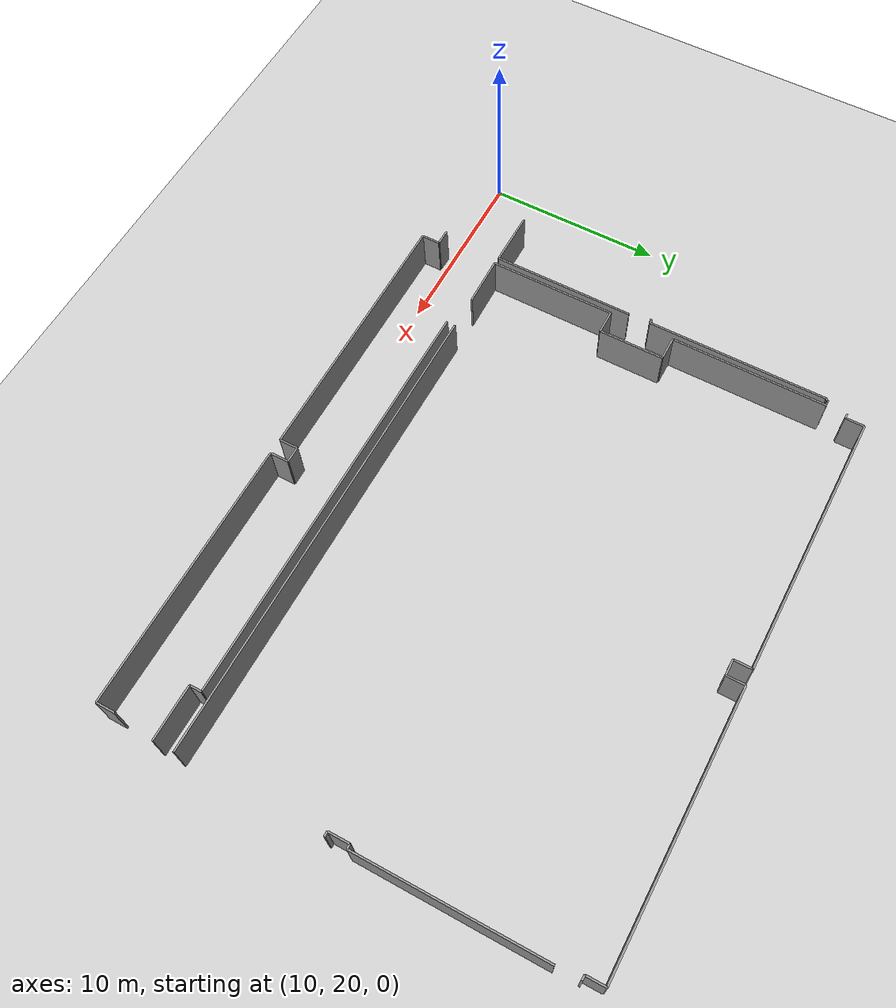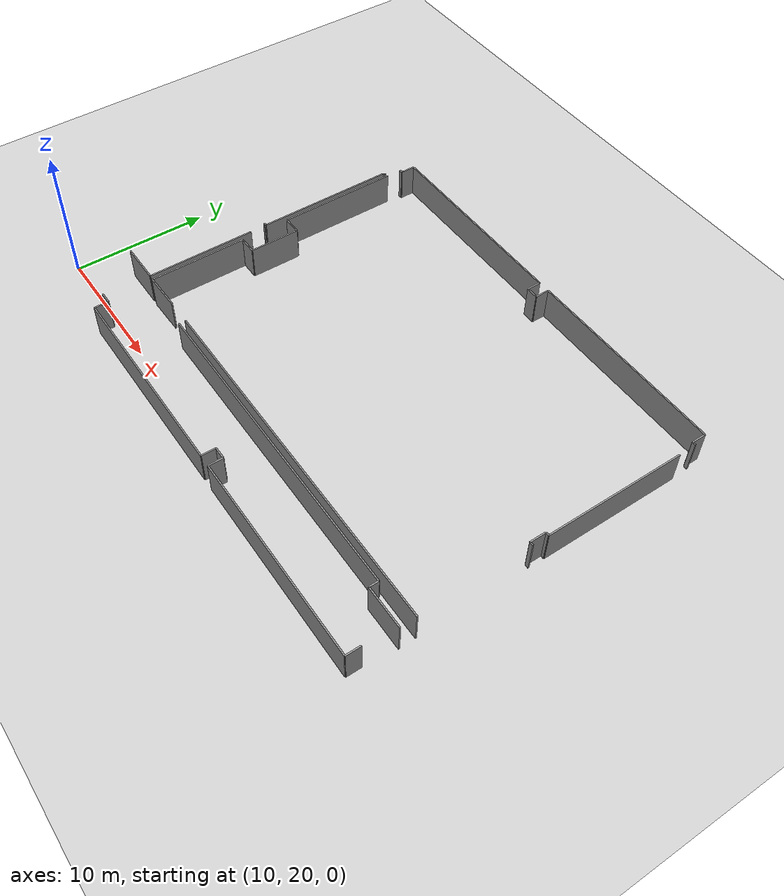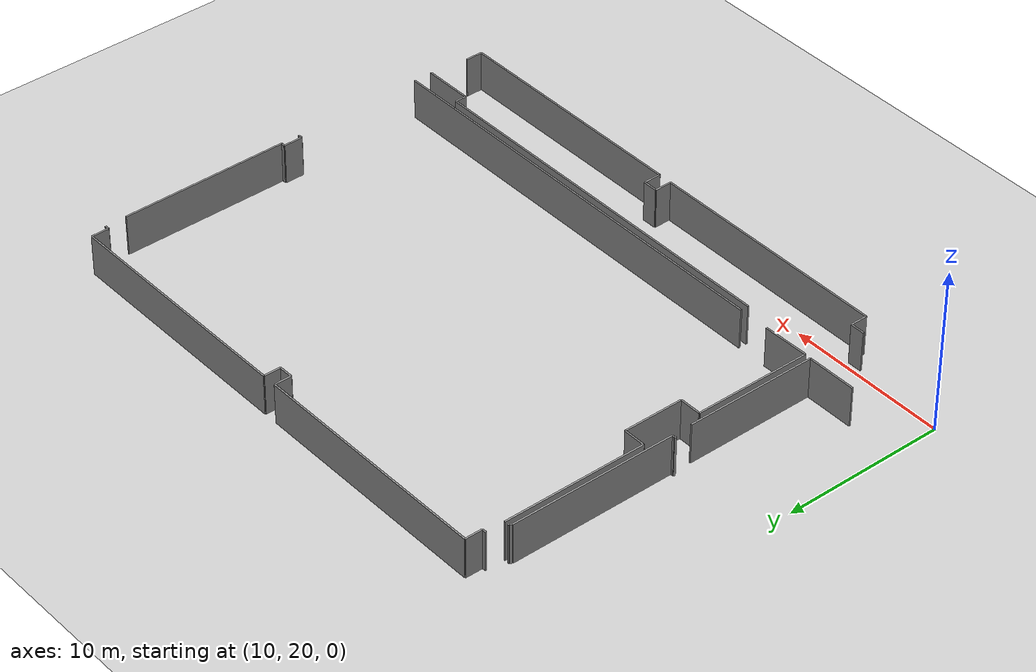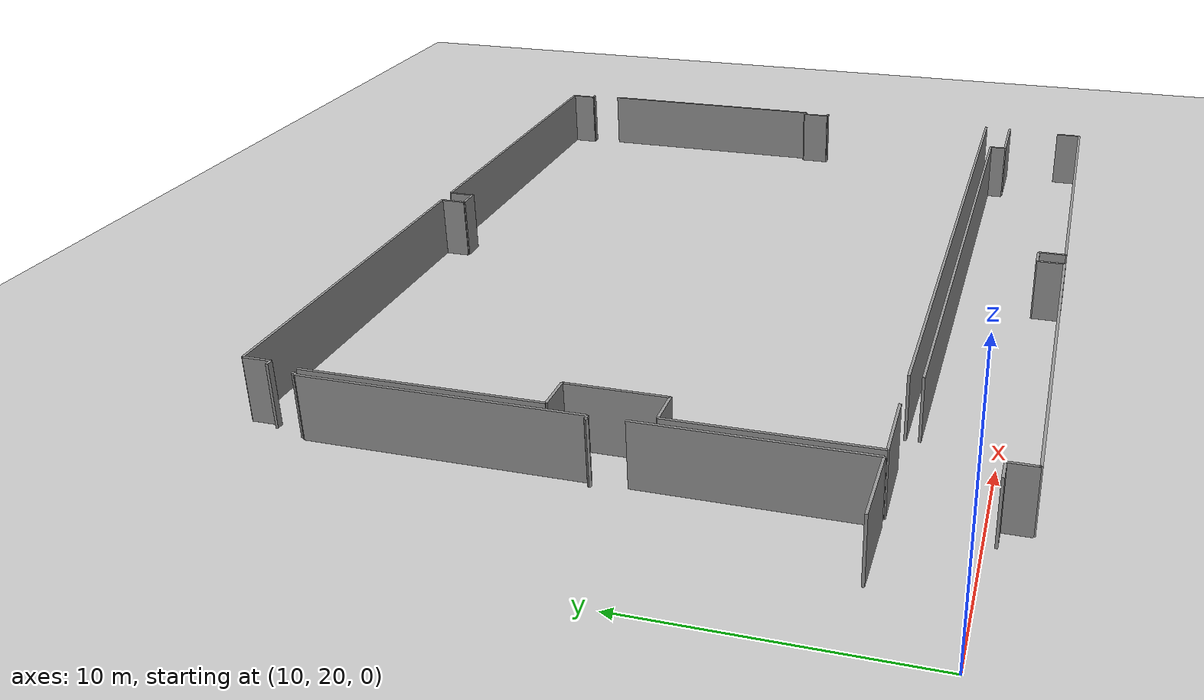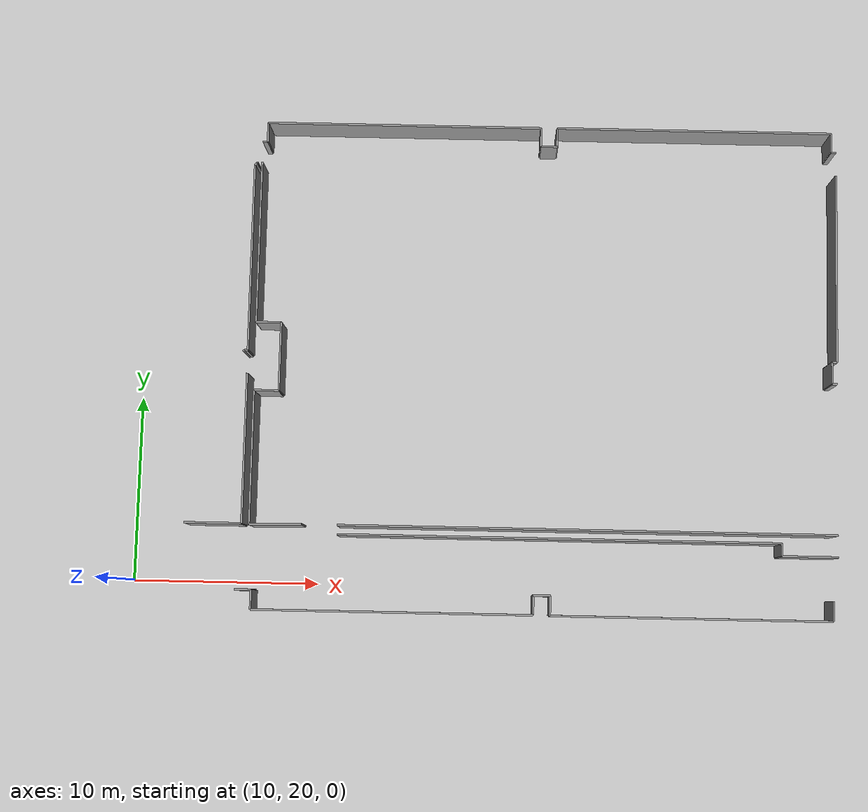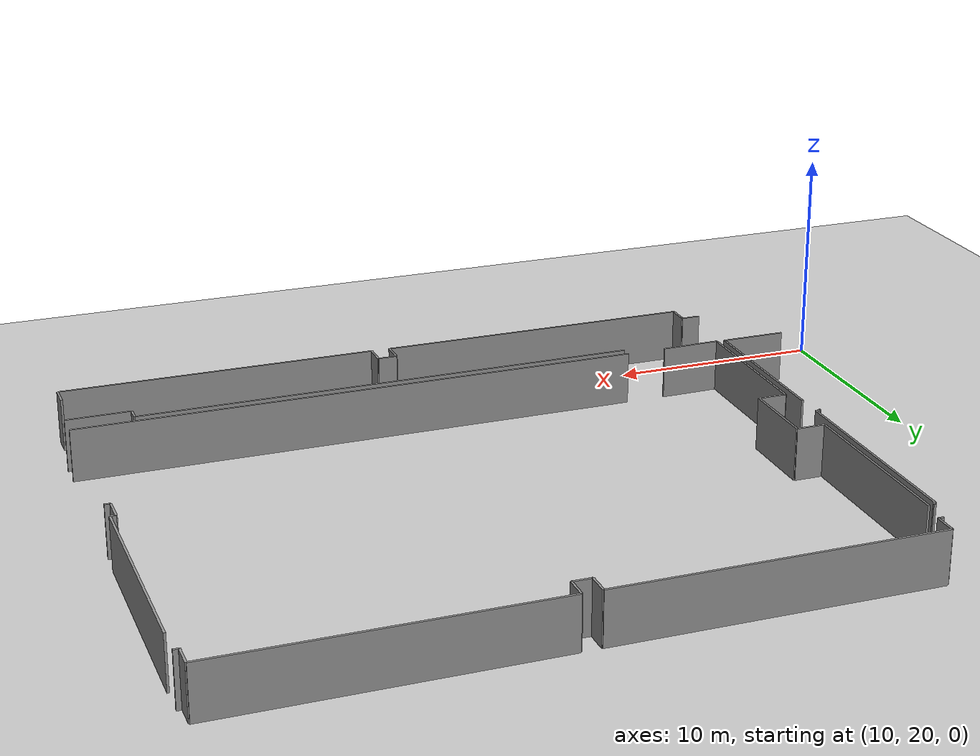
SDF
<sdf version="1.6">
 <world name="default">
  <model name="ground_plane">
   <static>1</static>
   <link name="link">
    <collision name="collision">
     <geometry><plane><normal>0 0 1</normal><size>100 100</size></plane></geometry>
     <surface><friction><ode><mu>100</mu><mu2>50</mu2></ode></friction></surface>
    </collision>
    <visual name="visual">
     <cast_shadows>0</cast_shadows>
     <geometry><plane><normal>0 0 1</normal><size>100 100</size></plane></geometry>
     <material>
      <script><uri>file://media/materials/scripts/gazebo.material</uri><name>Gazebo/Grey</name></script>
     </material>
    </visual>
   </link>
  </model>
  <model name="0510035737_A_40_1_105">
   <static>1</static>
   <link name="Wall_342">
    <collision name="Wall_342_Collision">
     <geometry><box><size>0.0915128213276 0.1 2.5</size></box></geometry>
     <pose>0.0457564106638 0 1.25 0 0 0</pose>
    </collision>
    <visual name="Wall_342_Visual">
     <pose>0.0457564106638 0 1.25 0 0 0</pose>
     <geometry><box><size>0.0915128213276 0.1 2.5</size></box></geometry>
     <material>
      <script><uri>file://media/materials/scripts/gazebo.material</uri><name>Gazebo/Grey</name></script>
      <ambient>1 1 1 1</ambient>
     </material>
    </visual>
    <pose>96.3073305583 -2.93451113724 0 0 0 -1.57079632679</pose>
   </link>
   <link name="Wall_343">
    <collision name="Wall_343_Collision">
     <geometry><box><size>0.141197640614 0.1 2.5</size></box></geometry>
     <pose>0.0705988203072 0 1.25 0 0 0</pose>
    </collision>
    <visual name="Wall_343_Visual">
     <pose>0.0705988203072 0 1.25 0 0 0</pose>
     <geometry><box><size>0.141197640614 0.1 2.5</size></box></geometry>
     <material>
      <script><uri>file://media/materials/scripts/gazebo.material</uri><name>Gazebo/Grey</name></script>
      <ambient>1 1 1 1</ambient>
     </material>
    </visual>
    <pose>96.3073305583 -3.02602395857 0 0 0 -2.43648130548</pose>
   </link>
   <link name="Wall_344">
    <collision name="Wall_344_Collision">
     <geometry><box><size>10.2710431826 0.1 2.5</size></box></geometry>
     <pose>5.13552159131 0 1.25 0 0 0</pose>
    </collision>
    <visual name="Wall_344_Visual">
     <pose>5.13552159131 0 1.25 0 0 0</pose>
     <geometry><box><size>10.2710431826 0.1 2.5</size></box></geometry>
     <material>
      <script><uri>file://media/materials/scripts/gazebo.material</uri><name>Gazebo/Grey</name></script>
      <ambient>1 1 1 1</ambient>
     </material>
    </visual>
    <pose>96.1998029932 -3.11753677989 0 0 0 -1.57079632679</pose>
   </link>
   <link name="Wall_345">
    <collision name="Wall_345_Collision">
     <geometry><box><size>0.174382765085 0.1 2.5</size></box></geometry>
     <pose>0.0871913825427 0 1.25 0 0 0</pose>
    </collision>
    <visual name="Wall_345_Visual">
     <pose>0.0871913825427 0 1.25 0 0 0</pose>
     <geometry><box><size>0.174382765085 0.1 2.5</size></box></geometry>
     <material>
      <script><uri>file://media/materials/scripts/gazebo.material</uri><name>Gazebo/Grey</name></script>
      <ambient>1 1 1 1</ambient>
     </material>
    </visual>
    <pose>96.1998029932 -13.3885799625 0 0 0 3.14159265359</pose>
   </link>
   <link name="Wall_346">
    <collision name="Wall_346_Collision">
     <geometry><box><size>0.106514396 0.1 2.5</size></box></geometry>
     <pose>0.053257198 0 1.25 0 0 0</pose>
    </collision>
    <visual name="Wall_346_Visual">
     <pose>0.053257198 0 1.25 0 0 0</pose>
     <geometry><box><size>0.106514396 0.1 2.5</size></box></geometry>
     <material>
      <script><uri>file://media/materials/scripts/gazebo.material</uri><name>Gazebo/Grey</name></script>
      <ambient>1 1 1 1</ambient>
     </material>
    </visual>
    <pose>96.0254202281 -13.3885799625 0 0 0 -2.2462827031</pose>
   </link>
   <link name="Wall_349">
    <collision name="Wall_349_Collision">
     <geometry><box><size>8.11057799244 0.1 2.5</size></box></geometry>
     <pose>4.05528899622 0 1.25 0 0 0</pose>
    </collision>
    <visual name="Wall_349_Visual">
     <pose>4.05528899622 0 1.25 0 0 0</pose>
     <geometry><box><size>8.11057799244 0.1 2.5</size></box></geometry>
     <material>
      <script><uri>file://media/materials/scripts/gazebo.material</uri><name>Gazebo/Grey</name></script>
      <ambient>1 1 1 1</ambient>
     </material>
    </visual>
    <pose>96.2165803438 -14.6598455721 0 0 0 -1.57079632679</pose>
   </link>
   <link name="Wall_350">
    <collision name="Wall_350_Collision">
     <geometry><box><size>3.06644212132 0.1 2.5</size></box></geometry>
     <pose>1.53322106066 0 1.25 0 0 0</pose>
    </collision>
    <visual name="Wall_350_Visual">
     <pose>1.53322106066 0 1.25 0 0 0</pose>
     <geometry><box><size>3.06644212132 0.1 2.5</size></box></geometry>
     <material>
      <script><uri>file://media/materials/scripts/gazebo.material</uri><name>Gazebo/Grey</name></script>
      <ambient>1 1 1 1</ambient>
     </material>
    </visual>
    <pose>96.2165803438 -22.7704235646 0 0 0 3.14159265359</pose>
   </link>
   <link name="Wall_357">
    <collision name="Wall_357_Collision">
     <geometry><box><size>7.23790156017 0.1 2.5</size></box></geometry>
     <pose>3.61895078008 0 1.25 0 0 0</pose>
    </collision>
    <visual name="Wall_357_Visual">
     <pose>3.61895078008 0 1.25 0 0 0</pose>
     <geometry><box><size>7.23790156017 0.1 2.5</size></box></geometry>
     <material>
      <script><uri>file://media/materials/scripts/gazebo.material</uri><name>Gazebo/Grey</name></script>
      <ambient>1 1 1 1</ambient>
     </material>
    </visual>
    <pose>96.6197451622 -22.8080455022 0 0 0 1.57079632679</pose>
   </link>
   <link name="Wall_358">
    <collision name="Wall_358_Collision">
     <geometry><box><size>1.33710400051 0.1 2.5</size></box></geometry>
     <pose>0.668552000254 0 1.25 0 0 0</pose>
    </collision>
    <visual name="Wall_358_Visual">
     <pose>0.668552000254 0 1.25 0 0 0</pose>
     <geometry><box><size>1.33710400051 0.1 2.5</size></box></geometry>
     <material>
      <script><uri>file://media/materials/scripts/gazebo.material</uri><name>Gazebo/Grey</name></script>
      <ambient>1 1 1 1</ambient>
     </material>
    </visual>
    <pose>96.6197451622 -15.570143942 0 0 0 0.0</pose>
   </link>
   <link name="Wall_359">
    <collision name="Wall_359_Collision">
     <geometry><box><size>3.72075879381 0.1 2.5</size></box></geometry>
     <pose>1.86037939691 0 1.25 0 0 0</pose>
    </collision>
    <visual name="Wall_359_Visual">
     <pose>1.86037939691 0 1.25 0 0 0</pose>
     <geometry><box><size>3.72075879381 0.1 2.5</size></box></geometry>
     <material>
      <script><uri>file://media/materials/scripts/gazebo.material</uri><name>Gazebo/Grey</name></script>
      <ambient>1 1 1 1</ambient>
     </material>
    </visual>
    <pose>97.9568491627 -15.570143942 0 0 0 1.57079632679</pose>
   </link>
   <link name="Wall_360">
    <collision name="Wall_360_Collision">
     <geometry><box><size>1.3660830606 0.1 2.5</size></box></geometry>
     <pose>0.683041530298 0 1.25 0 0 0</pose>
    </collision>
    <visual name="Wall_360_Visual">
     <pose>0.683041530298 0 1.25 0 0 0</pose>
     <geometry><box><size>1.3660830606 0.1 2.5</size></box></geometry>
     <material>
      <script><uri>file://media/materials/scripts/gazebo.material</uri><name>Gazebo/Grey</name></script>
      <ambient>1 1 1 1</ambient>
     </material>
    </visual>
    <pose>97.9568491627 -11.8493851482 0 0 0 3.14159265359</pose>
   </link>
   <link name="Wall_361">
    <collision name="Wall_361_Collision">
     <geometry><box><size>8.90267230148 0.1 2.5</size></box></geometry>
     <pose>4.45133615074 0 1.25 0 0 0</pose>
    </collision>
    <visual name="Wall_361_Visual">
     <pose>4.45133615074 0 1.25 0 0 0</pose>
     <geometry><box><size>8.90267230148 0.1 2.5</size></box></geometry>
     <material>
      <script><uri>file://media/materials/scripts/gazebo.material</uri><name>Gazebo/Grey</name></script>
      <ambient>1 1 1 1</ambient>
     </material>
    </visual>
    <pose>96.5907661021 -11.8493851482 0 0 0 1.57079632679</pose>
   </link>
   <link name="Wall_362">
    <collision name="Wall_362_Collision">
     <geometry><box><size>0.261574147628 0.1 2.5</size></box></geometry>
     <pose>0.130787073814 0 1.25 0 0 0</pose>
    </collision>
    <visual name="Wall_362_Visual">
     <pose>0.130787073814 0 1.25 0 0 0</pose>
     <geometry><box><size>0.261574147628 0.1 2.5</size></box></geometry>
     <material>
      <script><uri>file://media/materials/scripts/gazebo.material</uri><name>Gazebo/Grey</name></script>
      <ambient>1 1 1 1</ambient>
     </material>
    </visual>
    <pose>96.5907661021 -1.79161767977 0 0 0 0.0</pose>
   </link>
   <link name="Wall_363">
    <collision name="Wall_363_Collision">
     <geometry><box><size>1.07552985288 0.1 2.5</size></box></geometry>
     <pose>0.53776492644 0 1.25 0 0 0</pose>
    </collision>
    <visual name="Wall_363_Visual">
     <pose>0.53776492644 0 1.25 0 0 0</pose>
     <geometry><box><size>1.07552985288 0.1 2.5</size></box></geometry>
     <material>
      <script><uri>file://media/materials/scripts/gazebo.material</uri><name>Gazebo/Grey</name></script>
      <ambient>1 1 1 1</ambient>
     </material>
    </visual>
    <pose>96.8523402498 -1.79161767977 0 0 0 1.57079632679</pose>
   </link>
   <link name="Wall_364">
    <collision name="Wall_364_Collision">
     <geometry><box><size>15.0457246354 0.1 2.5</size></box></geometry>
     <pose>7.52286231769 0 1.25 0 0 0</pose>
    </collision>
    <visual name="Wall_364_Visual">
     <pose>7.52286231769 0 1.25 0 0 0</pose>
     <geometry><box><size>15.0457246354 0.1 2.5</size></box></geometry>
     <material>
      <script><uri>file://media/materials/scripts/gazebo.material</uri><name>Gazebo/Grey</name></script>
      <ambient>1 1 1 1</ambient>
     </material>
    </visual>
    <pose>96.8523402498 -0.716087826888 0 0 0 0.0</pose>
   </link>
   <link name="Wall_365">
    <collision name="Wall_365_Collision">
     <geometry><box><size>1.03256966731 0.1 2.5</size></box></geometry>
     <pose>0.516284833656 0 1.25 0 0 0</pose>
    </collision>
    <visual name="Wall_365_Visual">
     <pose>0.516284833656 0 1.25 0 0 0</pose>
     <geometry><box><size>1.03256966731 0.1 2.5</size></box></geometry>
     <material>
      <script><uri>file://media/materials/scripts/gazebo.material</uri><name>Gazebo/Grey</name></script>
      <ambient>1 1 1 1</ambient>
     </material>
    </visual>
    <pose>111.898064885 -0.716087826888 0 0 0 -1.57079632679</pose>
   </link>
   <link name="Wall_366">
    <collision name="Wall_366_Collision">
     <geometry><box><size>0.890216389692 0.1 2.5</size></box></geometry>
     <pose>0.445108194846 0 1.25 0 0 0</pose>
    </collision>
    <visual name="Wall_366_Visual">
     <pose>0.445108194846 0 1.25 0 0 0</pose>
     <geometry><box><size>0.890216389692 0.1 2.5</size></box></geometry>
     <material>
      <script><uri>file://media/materials/scripts/gazebo.material</uri><name>Gazebo/Grey</name></script>
      <ambient>1 1 1 1</ambient>
     </material>
    </visual>
    <pose>111.898064885 -1.7486574942 0 0 0 0.0</pose>
   </link>
   <link name="Wall_367">
    <collision name="Wall_367_Collision">
     <geometry><box><size>1.04400876998 0.1 2.5</size></box></geometry>
     <pose>0.522004384989 0 1.25 0 0 0</pose>
    </collision>
    <visual name="Wall_367_Visual">
     <pose>0.522004384989 0 1.25 0 0 0</pose>
     <geometry><box><size>1.04400876998 0.1 2.5</size></box></geometry>
     <material>
      <script><uri>file://media/materials/scripts/gazebo.material</uri><name>Gazebo/Grey</name></script>
      <ambient>1 1 1 1</ambient>
     </material>
    </visual>
    <pose>112.788281275 -1.7486574942 0 0 0 1.57079632679</pose>
   </link>
   <link name="Wall_368">
    <collision name="Wall_368_Collision">
     <geometry><box><size>15.0724158749 0.1 2.5</size></box></geometry>
     <pose>7.53620793747 0 1.25 0 0 0</pose>
    </collision>
    <visual name="Wall_368_Visual">
     <pose>7.53620793747 0 1.25 0 0 0</pose>
     <geometry><box><size>15.0724158749 0.1 2.5</size></box></geometry>
     <material>
      <script><uri>file://media/materials/scripts/gazebo.material</uri><name>Gazebo/Grey</name></script>
      <ambient>1 1 1 1</ambient>
     </material>
    </visual>
    <pose>112.788281275 -0.704648724222 0 0 0 0.0</pose>
   </link>
   <link name="Wall_369">
    <collision name="Wall_369_Collision">
     <geometry><box><size>1.06612436847 0.1 2.5</size></box></geometry>
     <pose>0.533062184233 0 1.25 0 0 0</pose>
    </collision>
    <visual name="Wall_369_Visual">
     <pose>0.533062184233 0 1.25 0 0 0</pose>
     <geometry><box><size>1.06612436847 0.1 2.5</size></box></geometry>
     <material>
      <script><uri>file://media/materials/scripts/gazebo.material</uri><name>Gazebo/Grey</name></script>
      <ambient>1 1 1 1</ambient>
     </material>
    </visual>
    <pose>127.86069715 -0.704648724222 0 0 0 -1.57079632679</pose>
   </link>
   <link name="Wall_370">
    <collision name="Wall_370_Collision">
     <geometry><box><size>0.258269517969 0.1 2.5</size></box></geometry>
     <pose>0.129134758984 0 1.25 0 0 0</pose>
    </collision>
    <visual name="Wall_370_Visual">
     <pose>0.129134758984 0 1.25 0 0 0</pose>
     <geometry><box><size>0.258269517969 0.1 2.5</size></box></geometry>
     <material>
      <script><uri>file://media/materials/scripts/gazebo.material</uri><name>Gazebo/Grey</name></script>
      <ambient>1 1 1 1</ambient>
     </material>
    </visual>
    <pose>127.86069715 -1.77077309269 0 0 0 0.0</pose>
   </link>
   <link name="Wall_371">
    <collision name="Wall_371_Collision">
     <geometry><box><size>10.3579803629 0.1 2.5</size></box></geometry>
     <pose>5.17899018144 0 1.25 0 0 0</pose>
    </collision>
    <visual name="Wall_371_Visual">
     <pose>5.17899018144 0 1.25 0 0 0</pose>
     <geometry><box><size>10.3579803629 0.1 2.5</size></box></geometry>
     <material>
      <script><uri>file://media/materials/scripts/gazebo.material</uri><name>Gazebo/Grey</name></script>
      <ambient>1 1 1 1</ambient>
     </material>
    </visual>
    <pose>128.118966668 -3.07305138064 0 0 0 -1.57079632679</pose>
   </link>
   <link name="Wall_372">
    <collision name="Wall_372_Collision">
     <geometry><box><size>0.252677067777 0.1 2.5</size></box></geometry>
     <pose>0.126338533888 0 1.25 0 0 0</pose>
    </collision>
    <visual name="Wall_372_Visual">
     <pose>0.126338533888 0 1.25 0 0 0</pose>
     <geometry><box><size>0.252677067777 0.1 2.5</size></box></geometry>
     <material>
      <script><uri>file://media/materials/scripts/gazebo.material</uri><name>Gazebo/Grey</name></script>
      <ambient>1 1 1 1</ambient>
     </material>
    </visual>
    <pose>128.118966668 -13.4310317435 0 0 0 3.14159265359</pose>
   </link>
   <link name="Wall_373">
    <collision name="Wall_373_Collision">
     <geometry><box><size>1.17593975406 0.1 2.5</size></box></geometry>
     <pose>0.58796987703 0 1.25 0 0 0</pose>
    </collision>
    <visual name="Wall_373_Visual">
     <pose>0.58796987703 0 1.25 0 0 0</pose>
     <geometry><box><size>1.17593975406 0.1 2.5</size></box></geometry>
     <material>
      <script><uri>file://media/materials/scripts/gazebo.material</uri><name>Gazebo/Grey</name></script>
      <ambient>1 1 1 1</ambient>
     </material>
    </visual>
    <pose>127.8662896 -13.4310317435 0 0 0 -1.57079632679</pose>
   </link>
   <link name="Wall_374">
    <collision name="Wall_374_Collision">
     <geometry><box><size>0.274792666264 0.1 2.5</size></box></geometry>
     <pose>0.137396333132 0 1.25 0 0 0</pose>
    </collision>
    <visual name="Wall_374_Visual">
     <pose>0.137396333132 0 1.25 0 0 0</pose>
     <geometry><box><size>0.274792666264 0.1 2.5</size></box></geometry>
     <material>
      <script><uri>file://media/materials/scripts/gazebo.material</uri><name>Gazebo/Grey</name></script>
      <ambient>1 1 1 1</ambient>
     </material>
    </visual>
    <pose>127.8662896 -14.6069714976 0 0 0 0.0</pose>
   </link>
   <link name="Wall_376">
    <collision name="Wall_376_Collision">
     <geometry><box><size>26.801563344 0.1 2.5</size></box></geometry>
     <pose>13.400781672 0 1.25 0 0 0</pose>
    </collision>
    <visual name="Wall_376_Visual">
     <pose>13.400781672 0 1.25 0 0 0</pose>
     <geometry><box><size>26.801563344 0.1 2.5</size></box></geometry>
     <material>
      <script><uri>file://media/materials/scripts/gazebo.material</uri><name>Gazebo/Grey</name></script>
      <ambient>1 1 1 1</ambient>
     </material>
    </visual>
    <pose>128.141082266 -22.7539004163 0 0 0 3.14159265359</pose>
   </link>
   <link name="Wall_377">
    <collision name="Wall_377_Collision">
     <geometry><box><size>2.82013153293 0.1 2.5</size></box></geometry>
     <pose>1.41006576647 0 1.25 0 0 0</pose>
    </collision>
    <visual name="Wall_377_Visual">
     <pose>1.41006576647 0 1.25 0 0 0</pose>
     <geometry><box><size>2.82013153293 0.1 2.5</size></box></geometry>
     <material>
      <script><uri>file://media/materials/scripts/gazebo.material</uri><name>Gazebo/Grey</name></script>
      <ambient>1 1 1 1</ambient>
     </material>
    </visual>
    <pose>99.4393568682 -22.7539004163 0 0 0 -3.12239198427</pose>
   </link>
   <link name="Wall_384">
    <collision name="Wall_384_Collision">
     <geometry><box><size>23.7857074767 0.1 2.5</size></box></geometry>
     <pose>11.8928537384 0 1.25 0 0 0</pose>
    </collision>
    <visual name="Wall_384_Visual">
     <pose>11.8928537384 0 1.25 0 0 0</pose>
     <geometry><box><size>23.7857074767 0.1 2.5</size></box></geometry>
     <material>
      <script><uri>file://media/materials/scripts/gazebo.material</uri><name>Gazebo/Grey</name></script>
      <ambient>1 1 1 1</ambient>
     </material>
    </visual>
    <pose>101.338756315 -23.2480696514 0 0 0 0.0</pose>
   </link>
   <link name="Wall_385">
    <collision name="Wall_385_Collision">
     <geometry><box><size>0.678720091513 0.1 2.5</size></box></geometry>
     <pose>0.339360045756 0 1.25 0 0 0</pose>
    </collision>
    <visual name="Wall_385_Visual">
     <pose>0.339360045756 0 1.25 0 0 0</pose>
     <geometry><box><size>0.678720091513 0.1 2.5</size></box></geometry>
     <material>
      <script><uri>file://media/materials/scripts/gazebo.material</uri><name>Gazebo/Grey</name></script>
      <ambient>1 1 1 1</ambient>
     </material>
    </visual>
    <pose>125.124463792 -23.2480696514 0 0 0 -1.57079632679</pose>
   </link>
   <link name="Wall_386">
    <collision name="Wall_386_Collision">
     <geometry><box><size>3.03898827492 0.1 2.5</size></box></geometry>
     <pose>1.51949413746 0 1.25 0 0 0</pose>
    </collision>
    <visual name="Wall_386_Visual">
     <pose>1.51949413746 0 1.25 0 0 0</pose>
     <geometry><box><size>3.03898827492 0.1 2.5</size></box></geometry>
     <material>
      <script><uri>file://media/materials/scripts/gazebo.material</uri><name>Gazebo/Grey</name></script>
      <ambient>1 1 1 1</ambient>
     </material>
    </visual>
    <pose>125.124463792 -23.9267897429 0 0 0 0.0</pose>
   </link>
   <link name="Wall_389">
    <collision name="Wall_389_Collision">
     <geometry><box><size>1.06383654793 0.1 2.5</size></box></geometry>
     <pose>0.531918273967 0 1.25 0 0 0</pose>
    </collision>
    <visual name="Wall_389_Visual">
     <pose>0.531918273967 0 1.25 0 0 0</pose>
     <geometry><box><size>1.06383654793 0.1 2.5</size></box></geometry>
     <material>
      <script><uri>file://media/materials/scripts/gazebo.material</uri><name>Gazebo/Grey</name></script>
      <ambient>1 1 1 1</ambient>
     </material>
    </visual>
    <pose>127.877220298 -26.2687553621 0 0 0 -1.57079632679</pose>
   </link>
   <link name="Wall_390">
    <collision name="Wall_390_Collision">
     <geometry><box><size>15.0874138095 0.1 2.5</size></box></geometry>
     <pose>7.54370690477 0 1.25 0 0 0</pose>
    </collision>
    <visual name="Wall_390_Visual">
     <pose>7.54370690477 0 1.25 0 0 0</pose>
     <geometry><box><size>15.0874138095 0.1 2.5</size></box></geometry>
     <material>
      <script><uri>file://media/materials/scripts/gazebo.material</uri><name>Gazebo/Grey</name></script>
      <ambient>1 1 1 1</ambient>
     </material>
    </visual>
    <pose>127.877220298 -27.33259191 0 0 0 3.14159265359</pose>
   </link>
   <link name="Wall_391">
    <collision name="Wall_391_Collision">
     <geometry><box><size>1.0615487274 0.1 2.5</size></box></geometry>
     <pose>0.5307743637 0 1.25 0 0 0</pose>
    </collision>
    <visual name="Wall_391_Visual">
     <pose>0.5307743637 0 1.25 0 0 0</pose>
     <geometry><box><size>1.0615487274 0.1 2.5</size></box></geometry>
     <material>
      <script><uri>file://media/materials/scripts/gazebo.material</uri><name>Gazebo/Grey</name></script>
      <ambient>1 1 1 1</ambient>
     </material>
    </visual>
    <pose>112.789806489 -27.33259191 0 0 0 1.57079632679</pose>
   </link>
   <link name="Wall_392">
    <collision name="Wall_392_Collision">
     <geometry><box><size>0.897334053573 0.1 2.5</size></box></geometry>
     <pose>0.448667026787 0 1.25 0 0 0</pose>
    </collision>
    <visual name="Wall_392_Visual">
     <pose>0.448667026787 0 1.25 0 0 0</pose>
     <geometry><box><size>0.897334053573 0.1 2.5</size></box></geometry>
     <material>
      <script><uri>file://media/materials/scripts/gazebo.material</uri><name>Gazebo/Grey</name></script>
      <ambient>1 1 1 1</ambient>
     </material>
    </visual>
    <pose>112.789806489 -26.2710431826 0 0 0 3.14159265359</pose>
   </link>
   <link name="Wall_393">
    <collision name="Wall_393_Collision">
     <geometry><box><size>1.04883861333 0.1 2.5</size></box></geometry>
     <pose>0.524419306663 0 1.25 0 0 0</pose>
    </collision>
    <visual name="Wall_393_Visual">
     <pose>0.524419306663 0 1.25 0 0 0</pose>
     <geometry><box><size>1.04883861333 0.1 2.5</size></box></geometry>
     <material>
      <script><uri>file://media/materials/scripts/gazebo.material</uri><name>Gazebo/Grey</name></script>
      <ambient>1 1 1 1</ambient>
     </material>
    </visual>
    <pose>111.892472435 -26.2710431826 0 0 0 -1.57079632679</pose>
   </link>
   <link name="Wall_394">
    <collision name="Wall_394_Collision">
     <geometry><box><size>15.0358107464 0.1 2.5</size></box></geometry>
     <pose>7.5179053732 0 1.25 0 0 0</pose>
    </collision>
    <visual name="Wall_394_Visual">
     <pose>7.5179053732 0 1.25 0 0 0</pose>
     <geometry><box><size>15.0358107464 0.1 2.5</size></box></geometry>
     <material>
      <script><uri>file://media/materials/scripts/gazebo.material</uri><name>Gazebo/Grey</name></script>
      <ambient>1 1 1 1</ambient>
     </material>
    </visual>
    <pose>111.892472435 -27.3198817959 0 0 0 3.14159265359</pose>
   </link>
   <link name="Wall_395">
    <collision name="Wall_395_Collision">
     <geometry><box><size>1.04222935401 0.1 2.5</size></box></geometry>
     <pose>0.521114677004 0 1.25 0 0 0</pose>
    </collision>
    <visual name="Wall_395_Visual">
     <pose>0.521114677004 0 1.25 0 0 0</pose>
     <geometry><box><size>1.04222935401 0.1 2.5</size></box></geometry>
     <material>
      <script><uri>file://media/materials/scripts/gazebo.material</uri><name>Gazebo/Grey</name></script>
      <ambient>1 1 1 1</ambient>
     </material>
    </visual>
    <pose>96.8566616885 -27.3198817959 0 0 0 1.57079632679</pose>
   </link>
   <link name="Wall_396">
    <collision name="Wall_396_Collision">
     <geometry><box><size>0.888691176003 0.1 2.5</size></box></geometry>
     <pose>0.444345588002 0 1.25 0 0 0</pose>
    </collision>
    <visual name="Wall_396_Visual">
     <pose>0.444345588002 0 1.25 0 0 0</pose>
     <geometry><box><size>0.888691176003 0.1 2.5</size></box></geometry>
     <material>
      <script><uri>file://media/materials/scripts/gazebo.material</uri><name>Gazebo/Grey</name></script>
      <ambient>1 1 1 1</ambient>
     </material>
    </visual>
    <pose>96.8566616885 -26.2776524419 0 0 0 3.14159265359</pose>
   </link>
   <pose>-80.2 45.8857980363 0 0 0 0</pose>
  </model>
 </world>
</sdf>
